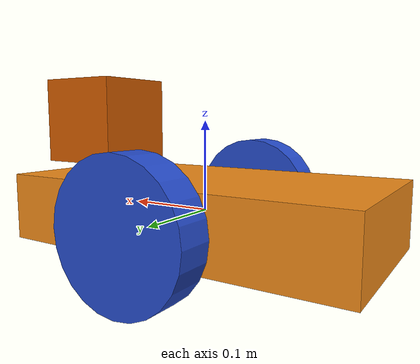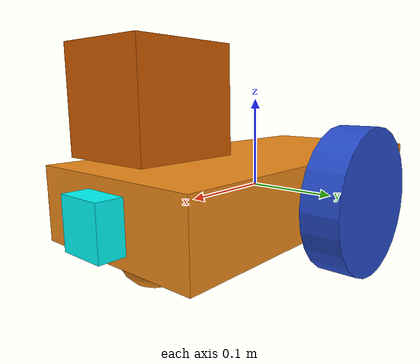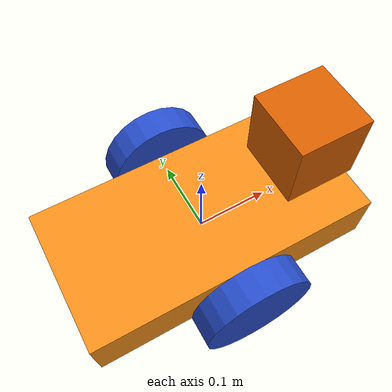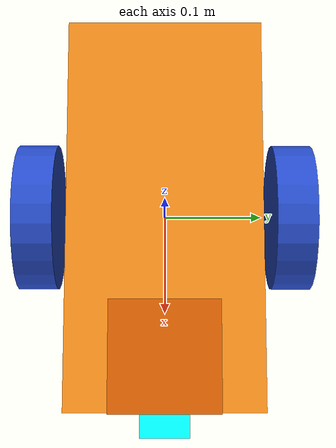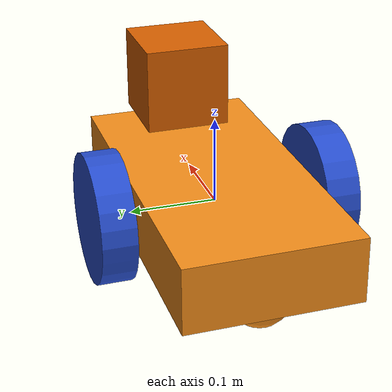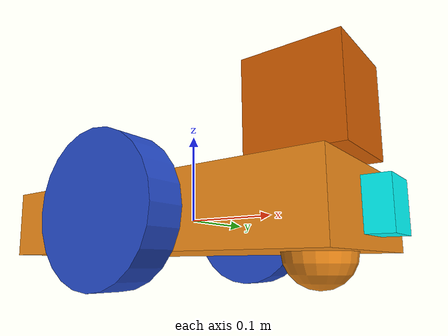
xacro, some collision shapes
<?xml version='1.0'?>

<robot name="my_robot" xmlns:xacro="http://www.ros.org/wiki/xacro">

  <xacro:include filename="$(find my_robot)/urdf/my_robot.gazebo"/>
  <link name="robot_footprint"></link>

  <joint name="robot_footprint_joint" type="fixed">
    <origin xyz="0 0 0" rpy="0 0 0" />
    <parent link="robot_footprint" />
    <child link="chassis" />
  </joint>

  <link name='chassis'>
    <pose>0 0 0.1 0 0 0</pose>

    <inertial>
      <mass value="10.0"/>
      <origin xyz="0.0 0 0" rpy=" 0 0 0"/>
      <inertia
          ixx="0.1" ixy="0" ixz="0"
          iyy="0.1" iyz="0"
          izz="0.1"
      />
    </inertial>

    <collision name='collision'>
      <origin xyz="0 0 0" rpy=" 0 0 0"/>
      <geometry>
        <box size=".4 .2 .076"/>
      </geometry>
    </collision>

    <visual name='chassis_visual'>
      <origin xyz="0 0 0" rpy=" 0 0 0"/>
      <geometry>
        <box size=".4 .2 .076"/>
      </geometry>
    </visual>

    <collision name='back_caster_collision'>
      <origin xyz="-0.15 0 -0.038" rpy=" 0 0 0"/>
      <geometry>
        <sphere radius="0.036"/>
      </geometry>
    </collision>

    <visual name='back_caster_visual'>
      <origin xyz ="-0.15 0 -0.038" rpy=" 0 0 0"/>
      <geometry>
        <sphere radius="0.036"/>
      </geometry>
    </visual>

    <collision name='front_caster_collision'>
      <origin xyz="0.15 0 -0.038" rpy=" 0 0 0"/>
      <geometry>
        <sphere radius="0.036"/>
      </geometry>
    </collision>

    <visual name='front_caster_visual'>
      <origin xyz="0.15 0 -0.038" rpy=" 0 0 0"/>
      <geometry>
        <sphere radius="0.036"/>
      </geometry>
    </visual>
  </link>

  <link name="left_wheel">

    <inertial>
      <mass value="1.0"/>
      <origin xyz="0 0 0" rpy="0 1.57 1.57"/>
      <inertia
          ixx="0.1" ixy="0" ixz="0"
          iyy="0.1" iyz="0"
          izz="0.1"
      />
    </inertial>

    <collision name="left_wheel_collision">
      <origin xyz="0 0 0" rpy="0 1.57 1.57"/>
      <geometry>
        <cylinder radius="0.075" length="0.04"/>
      </geometry>
    </collision>

    <visual name="left_wheel_visual">
      <origin xyz="0 0 0" rpy="0 1.57 1.57"/>
      <geometry>
        <cylinder radius="0.075" length="0.04"/>
      </geometry>
    </visual>
  </link>

  <joint name="left_wheel_hinge" type="continuous">
    <origin xyz="0 0.13 0" rpy="0 0 0" />
    <parent link="chassis" />
    <child link="left_wheel" />
    <axis xyz="0 1 0" rpy="0 0 0"/>
    <limit effort="10000" velocity="1000"/>
    <dynamics damping="1.0" friction="1.0"/>

  </joint>

  <link name="right_wheel">

    <inertial>
      <mass value="1.0"/>
      <origin xyz="0 0 0" rpy="0 1.57 1.57"/>
      <inertia
          ixx="0.1" ixy="0" ixz="0"
          iyy="0.1" iyz="0"
          izz="0.1"
      />
    </inertial>

    <collision name="right_wheel_collision">
      <origin xyz="0 0 0" rpy="0 1.57 1.57"/>
      <geometry>
        <cylinder radius="0.075" length="0.04"/>
      </geometry>
    </collision>

    <visual name="right_wheel_visual">
      <origin xyz="0 0 0" rpy="0 1.57 1.57"/>
      <geometry>
        <cylinder radius="0.075" length="0.04"/>
      </geometry>
    </visual>
  </link>

  <joint name="right_wheel_hinge" type="continuous">
    <origin xyz="0 -0.13 0" rpy="0 0 0" />
    <parent link="chassis" />
    <child link="right_wheel" />
    <axis xyz="0 1 0" rpy="0 0 0"/>
    <limit effort="10000" velocity="1000"/>
    <dynamics damping="1.0" friction="1.0"/>
  </joint>

  <link name="camera">

    <inertial>
      <mass value="0.1"/>
      <origin xyz="0 0 0" rpy="0 0 0"/>
      <inertia
          ixx="1e-6" ixy="0" ixz="0"
          iyy="1e-6" iyz="0"
          izz="1e-6"
      />
    </inertial>

    <collision name="camera_collision">
      <origin xyz="0 0 0" rpy="0 0 0"/>
      <geometry>
        <box size="0.05 0.05 0.05"/>
      </geometry>
    </collision>

    <visual name="camera_visual">
      <origin xyz="0 0 0" rpy="0 0 0"/>
      <geometry>
        <box size="0.05 0.05 0.05"/>
      </geometry>
      <material name="Cyan">
        <color rgba="0 1.0 1.0 1.0"/>
      </material>
    </visual>
  </link>

  <joint name="camera_joint" type="fixed">
    <origin xyz="0.2 0 0" rpy="0 0 0" />
    <parent link="chassis" />
    <child link="camera" />
    <axis xyz="0 1 0" rpy="0 0 0"/>
  </joint>

  <link name="hokuyo">

    <inertial>
      <mass value="1e-5"/>
      <origin xyz="0 0 0" rpy="0 0 0"/>
      <inertia
          ixx="1e-6" ixy="0" ixz="0"
          iyy="1e-6" iyz="0"
          izz="1e-6"
      />
    </inertial>

    <collision name="hokuyo_collision">
      <origin xyz="0 0 0" rpy="0 0 0"/>
      <geometry>
        <box size="0.1 0.1 0.1"/>
      </geometry>
    </collision>

    <visual name="hokuyo_visual">
      <origin xyz="0 0 0" rpy="0 0 0"/>
      <geometry>
        <mesh filename="package://my_robot/meshes/hokuyo.dae"/>
      </geometry>
    </visual>
  </link>

  <joint name="hokuyo_joint" type="fixed">
    <origin xyz="0.15 0 0.1" rpy="0 0 0" />
    <parent link="chassis" />
    <child link="hokuyo" />
    <axis xyz="0 1 0" rpy="0 0 0"/>
  </joint>

  <gazebo reference="left_wheel">
  <material>Gazebo/Blue</material>
  </gazebo>

  <gazebo reference="right_wheel">
  <material>Gazebo/Blue</material>
  </gazebo>

  <gazebo reference="chassis">
  <material>Gazebo/Orange</material>
  </gazebo>

  <gazebo reference="camera">
  <material>Gazebo/Yellow</material>
  </gazebo>

</robot>
